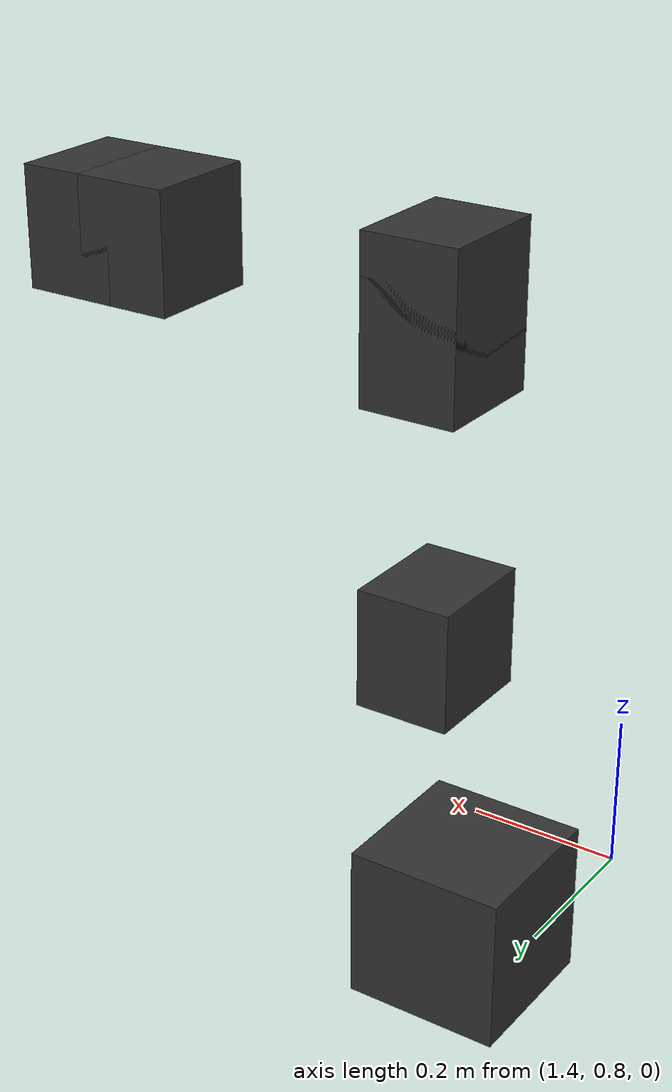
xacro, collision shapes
<?xml version="1.0"?>
<robot xmlns:xacro="http://www.ros.org/wiki/xacro" name="comau">

    <xacro:include filename="$(find comau_racer5_080_description)/urdf/materials.xacro"/>

    <xacro:macro name="inertial_box" params="mass x y z *origin">
        <inertial>
            <xacro:insert_block name="origin"/>
            <mass value="${mass}" />
            <inertia ixx="${(1/12) * mass * (y*y+z*z)}" ixy="0.0" ixz="0.0" iyy="${(1/12) * mass * (x*x+z*z)}" iyz="0.0" izz="${(1/12) * mass * (x*x+y*y)}" />
        </inertial>
    </xacro:macro>

    <link name="world"></link>

    <xacro:property name="r2d" value="${pi/180}"/>
    <xacro:property name="meshes_path" value="package://comau_racer5_080_description/meshes"/>
    <link name="base_link">
        <visual>
            <origin xyz="0 0 0" rpy="0 0 0"/>
            <geometry>
                <mesh filename="${meshes_path}/Base.stl" scale="0.001 0.001 0.001"/>
            </geometry>
            <material name="grey"/>
        </visual>
        <collision>
            <origin xyz="0.0 0.0 0.0" rpy="0.0 0.0 0.0"/>
            <geometry>
                <box size="0.2 0.2 0.2"/>
            </geometry>
        </collision>
        <xacro:inertial_box mass="0.1" x="0.12" y="0.15" z="0.15">
            <origin xyz="0.0 0 0" rpy="0 0 0"/>
        </xacro:inertial_box>
    </link>

    <joint name="base_joint" type="fixed">
        <origin xyz="1.5 1.0 0" rpy="0 0 0"/>
        <parent link="world"/>
        <child link="base_link"/>
    </joint>

    <link name="q1_link">
        <visual>
            <origin xyz="0 0 0.19" rpy="0 0 0"/>
            <geometry>
                <mesh filename="${meshes_path}/Q1.stl" scale="0.001 0.001 0.001"/>
            </geometry>
            <material name="grey"/>
        </visual>
        <collision>
            <origin xyz="0.0 0 0" rpy="0 0 0"/>
            <geometry>
                <box size="0.12 0.15 0.15" />
            </geometry>
        </collision>
        <inertial>
            <mass value="1"/>
            <inertia
              ixx="1.0" ixy="0.0" ixz="0.0"
              iyy="1.0" iyz="0.0"
              izz="1.0"/>
      </inertial>
    </link>

    <joint name="q1_joint" type="revolute">
        <origin xyz="0 0 0" rpy="0 0 0"/>
        <parent link="base_link"/>
        <child link="q1_link"/>
        <axis xyz="0 0 1"/>
        <limit lower="-${r2d*170}" upper="${r2d*170}" effort="0.0" velocity="${r2d*400}"/>
    </joint>

    <link name="q2_link">
        <visual>
            <origin xyz="0 0 0" rpy="0 0 0"/>
            <geometry>
                <mesh filename="${meshes_path}/Q2.stl" scale="0.001 0.001 0.001"/>
            </geometry>
            <material name="grey"/>
        </visual>
        <collision>
            <origin xyz="0.0 0 0" rpy="0 0 0"/>
            <geometry>
                <box size="0.12 0.15 0.15" />
            </geometry>
        </collision>
        <inertial>
            <mass value="1"/>
            <inertia
              ixx="1.0" ixy="0.0" ixz="0.0"
              iyy="1.0" iyz="0.0"
              izz="1.0"/>
      </inertial>
    </link>

    <joint name="q2_joint" type="revolute">
        <axis xyz="0 1 0"/>
        <origin xyz="0.050 0.0 0.365"/>
        <parent link="q1_link"/>
        <child link="q2_link"/>
        <limit lower="-${r2d*85}" upper="${r2d*135}" effort="0.0" velocity="${r2d*360}"/>
    </joint>

    <link name="q3_link">
        <visual>
            <origin xyz="0 0 0" rpy="0 0 0"/>
            <geometry>
                <mesh filename="${meshes_path}/Q3.stl" scale="0.001 0.001 0.001"/>
            </geometry>
            <material name="grey"/>
        </visual>
        <collision>
            <origin xyz="0.0 0 0" rpy="0 0 0"/>
            <geometry>
                <box size="0.12 0.15 0.15" />
            </geometry>
        </collision>
        <inertial>
            <mass value="1"/>
            <inertia
              ixx="1.0" ixy="0.0" ixz="0.0"
              iyy="1.0" iyz="0.0"
              izz="1.0"/>
      </inertial>
    </link>

    <joint name="q3_joint" type="revolute">
       <axis xyz="0 1 0"/>
       <origin xyz="0 0 0.370"/>
       <parent link="q2_link"/>
       <child link="q3_link"/>
       <limit lower="-${r2d*155}" upper="${r2d*90}" effort="0.0" velocity="${r2d*400}"/>
    </joint>

    <link name="q4_link">
        <visual>
            <origin xyz="0 0 0" rpy="0 0 0"/>
            <geometry>
                <mesh filename="${meshes_path}/Q4.stl" scale="0.001 0.001 0.001"/>
            </geometry>
            <material name="grey"/>
        </visual>
        <collision>
            <origin xyz="0.0 0 0" rpy="0 0 0"/>
            <geometry>
                <box size="0.12 0.15 0.15" />
            </geometry>
        </collision>
        <inertial>
            <mass value="1"/>
            <inertia
              ixx="1.0" ixy="0.0" ixz="0.0"
              iyy="1.0" iyz="0.0"
              izz="1.0"/>
      </inertial>
    </link>

    <joint name="q4_joint" type="revolute">
       <axis xyz="1 0 0"/>
       <origin xyz="0 0 0.050"/>
       <parent link="q3_link"/>
       <child link="q4_link"/>
       <limit lower="-${r2d*200}" upper="${r2d*200}" effort="0.0" velocity="${r2d*500}"/>
    </joint>

    <link name="q5_link">
        <visual>
            <origin xyz="0 0 0" rpy="0 0 0"/>
            <geometry>
                <mesh filename="${meshes_path}/Q5.stl" scale="0.001 0.001 0.001"/>
            </geometry>
            <material name="grey"/>
        </visual>
        <collision>
            <origin xyz="0.0 0 0" rpy="0 0 0"/>
            <geometry>
                <box size="0.12 0.15 0.15" />
            </geometry>
        </collision>
        <inertial>
            <mass value="1"/>
            <inertia
              ixx="1.0" ixy="0.0" ixz="0.0"
              iyy="1.0" iyz="0.0"
              izz="1.0"/>
      </inertial>
    </link>

    <joint name="q5_joint" type="revolute">
       <axis xyz="0 1 0"/>
       <origin xyz="0.38594 0 0"/>
       <parent link="q4_link"/>
       <child link="q5_link"/>
       <limit lower="-${r2d*125}" upper="${r2d*125}" effort="0.0" velocity="${r2d*500}"/>
    </joint>

    <link name="q6_link">
        <visual>
            <origin xyz="0 0 0" rpy="0 0 0"/>
            <geometry>
                <mesh filename="${meshes_path}/Q6.stl" scale="0.001 0.001 0.001"/>
            </geometry>
            <material name="grey"/>
        </visual>
        <collision>
            <origin xyz="0.0 0 0" rpy="0 0 0"/>
            <geometry>
                <box size="0.12 0.15 0.15" />
            </geometry>
        </collision>
        <inertial>
            <mass value="1"/>
            <inertia
              ixx="1.0" ixy="0.0" ixz="0.0"
              iyy="1.0" iyz="0.0"
              izz="1.0"/>
      </inertial>
    </link>

    <joint name="q6_joint" type="revolute">
       <axis xyz="1 0 0"/>
       <origin xyz="0.080 0 0"/>
       <parent link="q5_link"/>
       <child link="q6_link"/>
       <limit lower="-${r2d*2700}" upper="${r2d*2700}" effort="0.0" velocity="${r2d*800}"/>
    </joint>

    <!-- Gazebo requires the use of plugins to interact with other systems such as ROS. -->

    <!-- This plugin will publish the joint_states for the selected joints
            (which robot_state_publisher can then use to broadcast the approprate tf). -->

    <gazebo>
        <plugin name="gazebo_ros_joint_state_publisher" filename="libgazebo_ros_joint_state_publisher.so">
            <update_rate>20</update_rate>
            <joint_name>q1_joint</joint_name>
            <joint_name>q2_joint</joint_name>
            <joint_name>q3_joint</joint_name>
            <joint_name>q4_joint</joint_name>
            <joint_name>q5_joint</joint_name>
            <joint_name>q6_joint</joint_name>
        </plugin>
    </gazebo>

    <gazebo>

    </gazebo>

    <!-- This plugin will read a JointTrajectory message from the /set_joint_trajectory topic
            and move the machine accordingly. It's a bit clunky but it works. -->
    <gazebo>
        <plugin name="gazebo_ros_joint_pose_trajectory" filename="libgazebo_ros_joint_pose_trajectory.so">
            <update_rate>2</update_rate>
        </plugin>
    </gazebo>

</robot>

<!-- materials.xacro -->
<robot xmlns:xacro="http://www.ros.org/wiki/xacro">

  <material name="black">
    <color rgba="0.0 0.0 0.0 1.0"/>
  </material>

  <material name="blue">
    <color rgba="0.0 0.0 0.8 1.0"/>
  </material>

  <material name="green">
    <color rgba="0.0 1.0 0.0 1.0"/>
  </material>

  <material name="grey">
    <color rgba="0.2 0.2 0.2 1.0"/>
  </material>

  <material name="orange">
    <color rgba="${255/255} ${108/255} ${10/255} 1.0"/>
  </material>

  <material name="brown">
    <color rgba="${222/255} ${207/255} ${195/255} 1.0"/>
  </material>

  <material name="red">
    <color rgba="0.8 0.0 0.0 1.0"/>
  </material>

  <material name="white">
    <color rgba="1.0 1.0 1.0 1.0"/>
  </material>

</robot>
